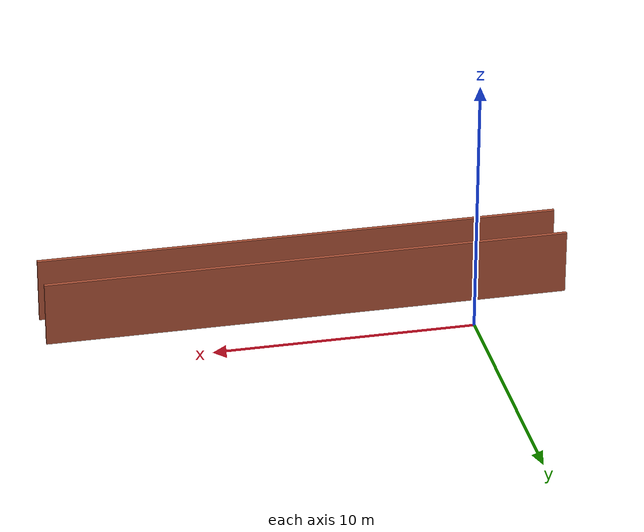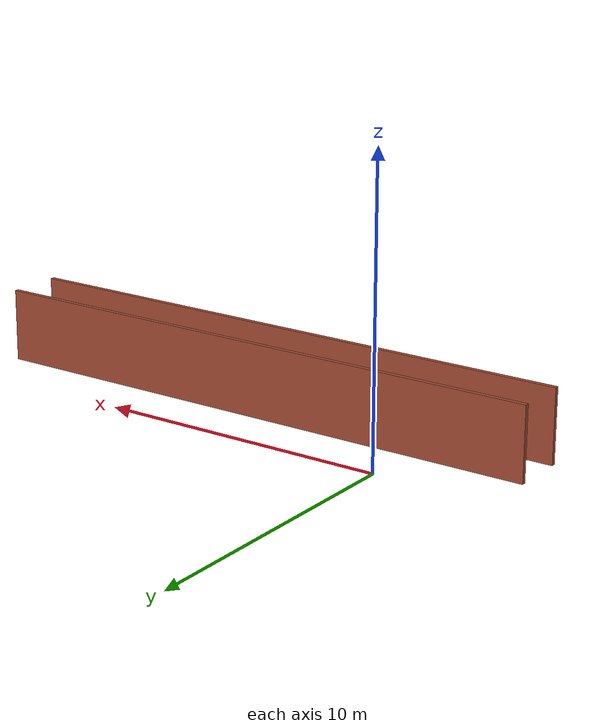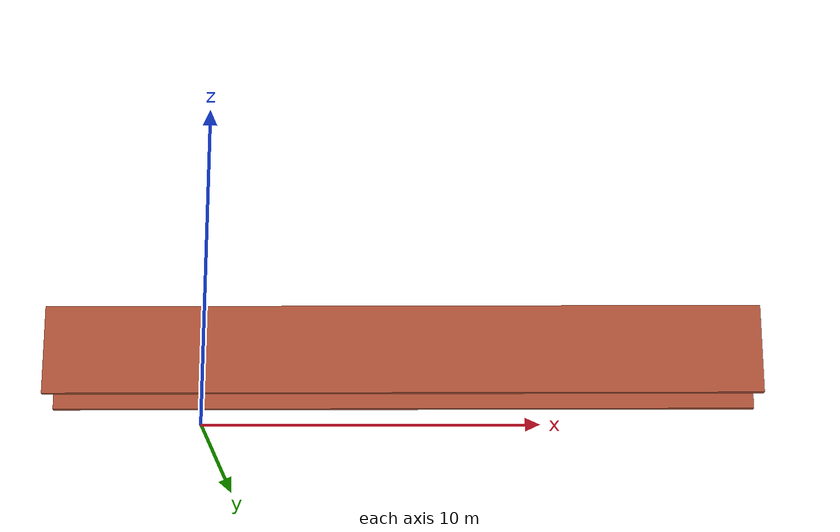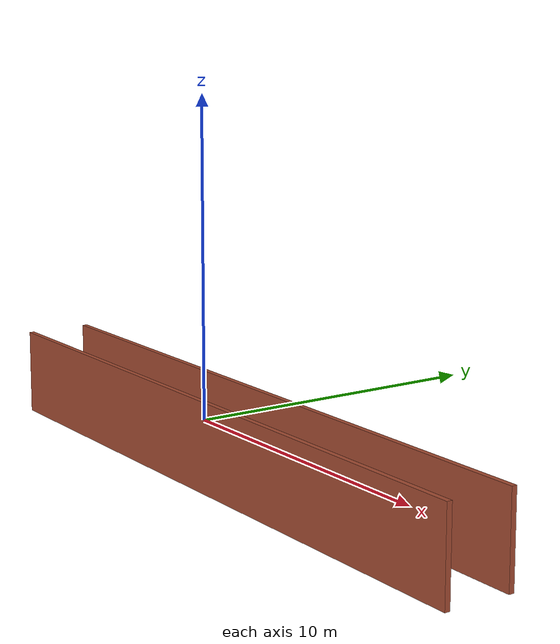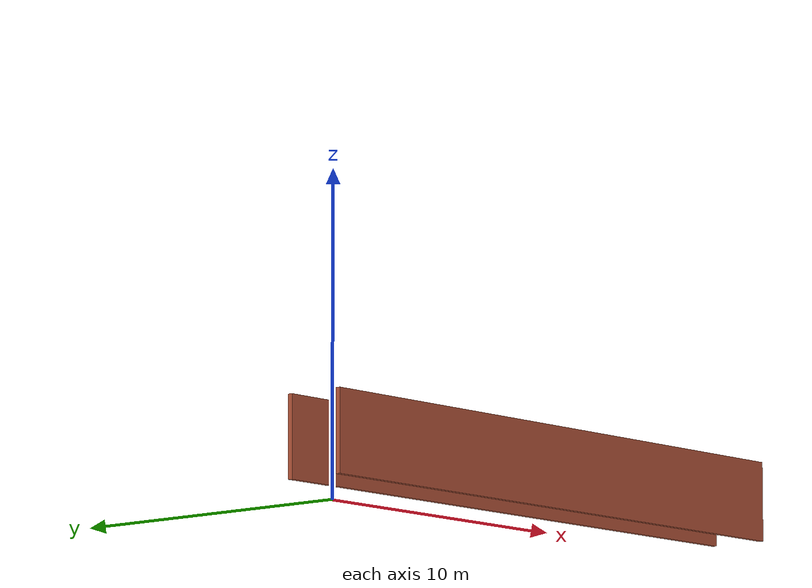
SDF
<?xml version='1.0'?>
<sdf version='1.6'>
  <model name='corridor'>
    <pose frame=''>5.965 -1.9375 0 0 -0 0</pose>
    <link name='Wall_0'>
      <collision name='Wall_0_Collision'>
        <geometry>
          <box>
            <size>20 0.15 2.5</size>
          </box>
        </geometry>
        <pose frame=''>0 0 1.25 0 -0 0</pose>
      </collision>
      <visual name='Wall_0_Visual'>
        <pose frame=''>0 0 1.25 0 -0 0</pose>
        <geometry>
          <box>
            <size>20 0.15 2.5</size>
          </box>
        </geometry>
        <material>
          <script>
            <uri>file://media/materials/scripts/gazebo.material</uri>
            <name>Gazebo/Bricks</name>
          </script>
          <ambient>1 1 1 1</ambient>
        </material>
        <meta>
          <layer>0</layer>
        </meta>
      </visual>
      <pose frame=''>0 -0.0125 0 0 -0 0</pose>
    </link>
    <link name='Wall_3'>
      <collision name='Wall_3_Collision'>
        <geometry>
          <box>
            <size>20 0.15 2.5</size>
          </box>
        </geometry>
        <pose frame=''>0 0 1.25 0 -0 0</pose>
      </collision>
      <visual name='Wall_3_Visual'>
        <pose frame=''>0 0 1.25 0 -0 0</pose>
        <geometry>
          <box>
            <size>20 0.15 2.5</size>
          </box>
        </geometry>
        <material>
          <script>
            <uri>file://media/materials/scripts/gazebo.material</uri>
            <name>Gazebo/Bricks</name>
          </script>
          <ambient>1 1 1 1</ambient>
        </material>
        <meta>
          <layer>0</layer>
        </meta>
      </visual>
      <pose frame=''>0 -1.8625 0 0 -0 0</pose>
    </link>
    <static>1</static>
  </model>
</sdf>
